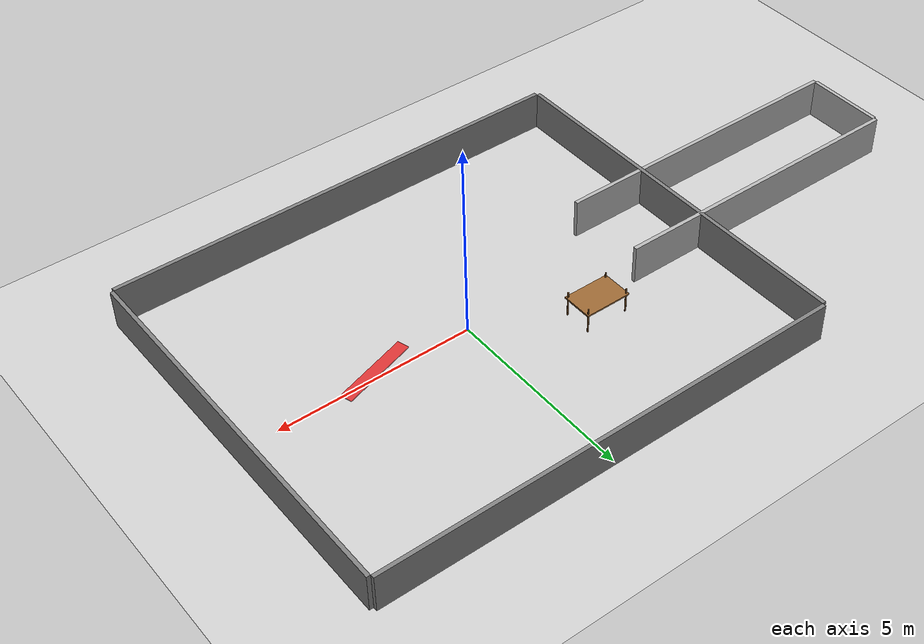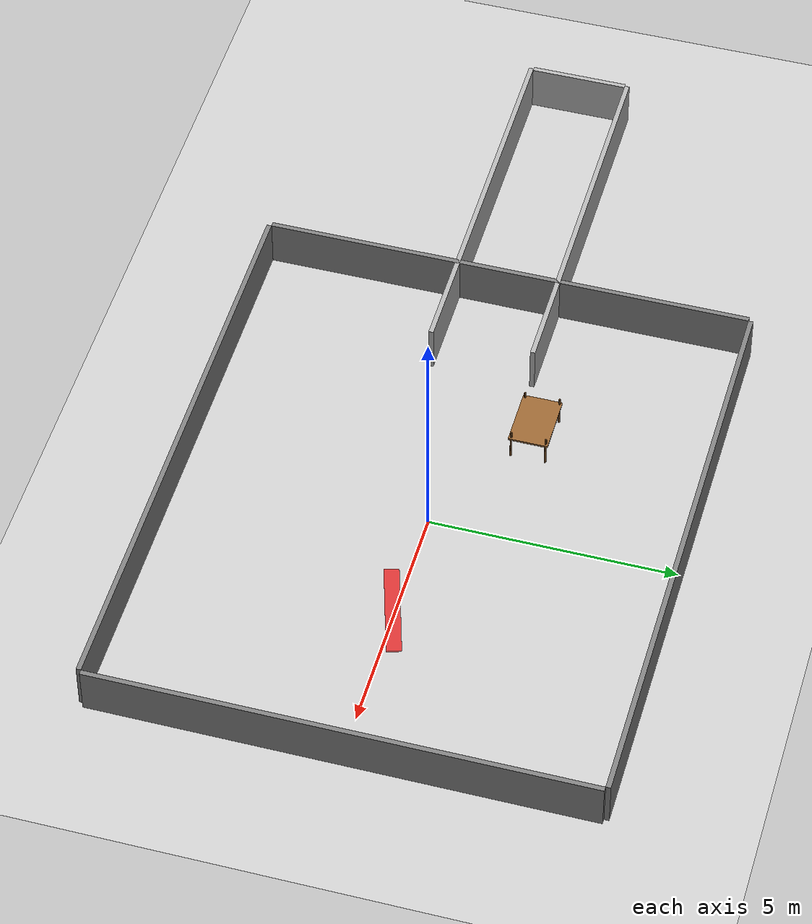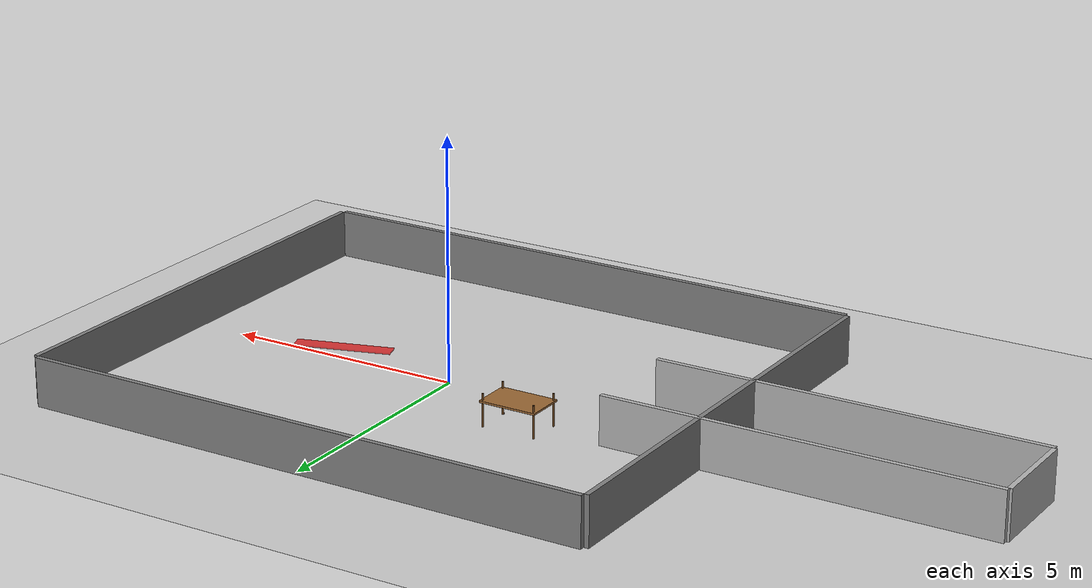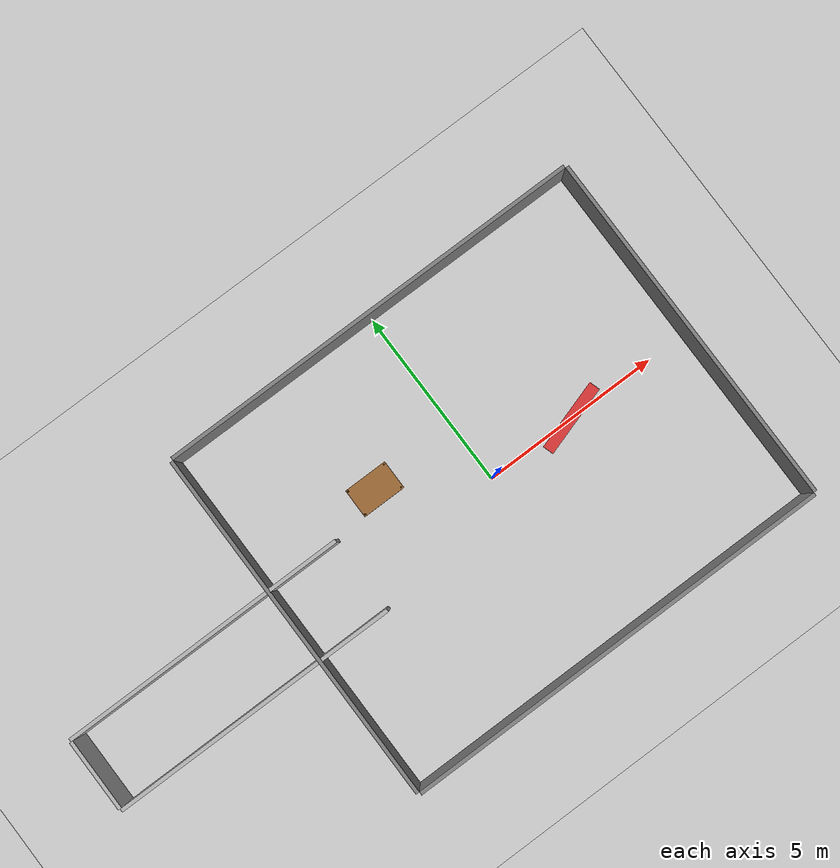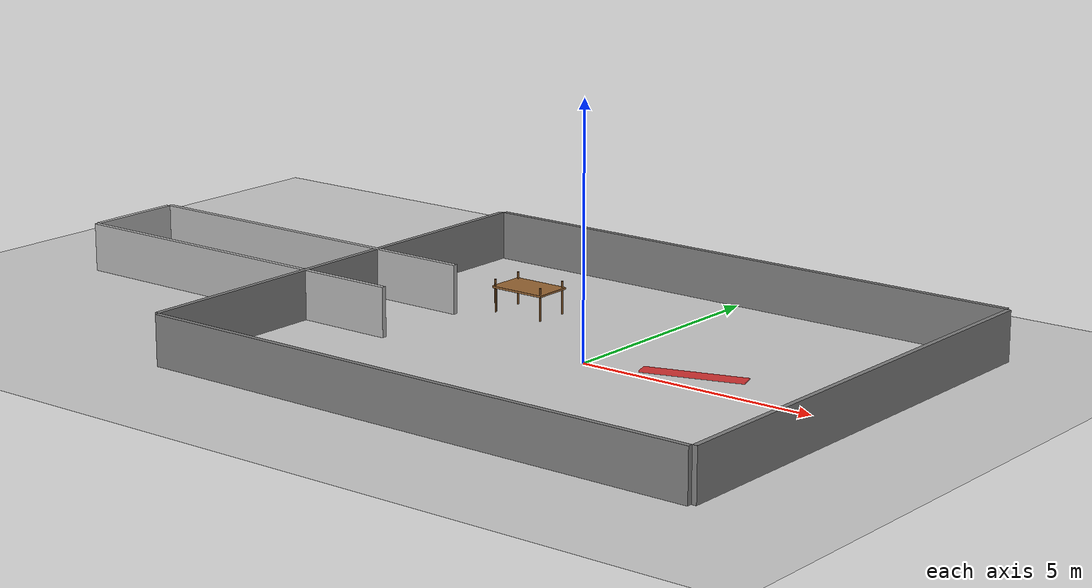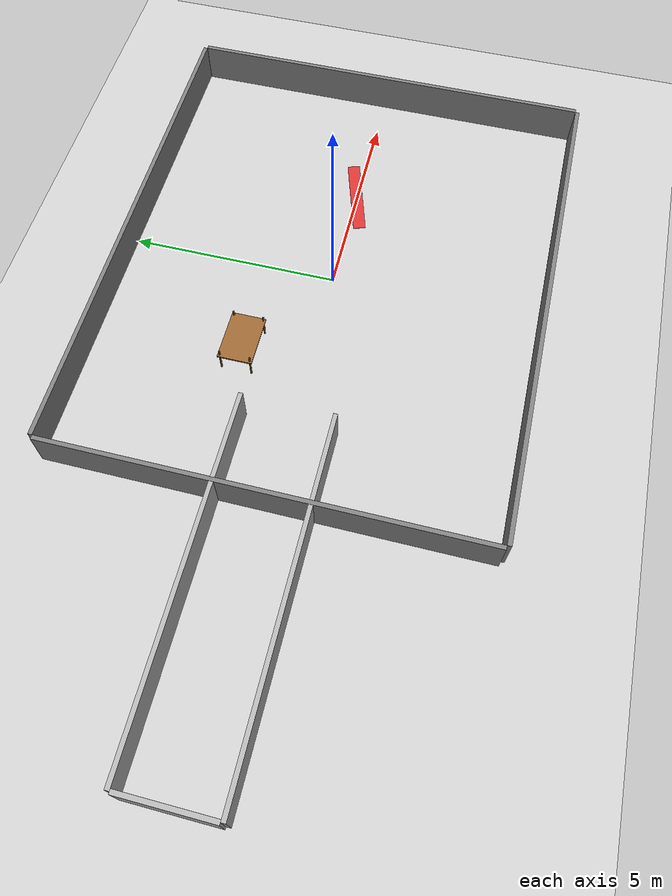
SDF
<sdf version="1.6">
 <world name="test_3d_obstacles">
  <gravity>0 0 -9.81</gravity>
  <magnetic_field>0 0 -5e-05</magnetic_field>
  <atmosphere type="adiabatic"/>
  <physics type="ode">
   <real_time_update_rate>1000</real_time_update_rate>
   <real_time_factor>1</real_time_factor>
   <ode>
    <solver><type>quick</type><iters>50</iters><precon>1</precon></solver>
    <constraints>
     <cfm>0.00001</cfm>
     <erp>0.2</erp>
     <contact_max_correcting_vel>100</contact_max_correcting_vel>
     <contact_surface_layer>0.001</contact_surface_layer>
    </constraints>
   </ode>
  </physics>
  <scene><ambient>0.4 0.4 0.4 1</ambient><background>0.7 0.7 0.7 1</background><shadows>true</shadows></scene>
  <light name="sun" type="directional">
   <diffuse>0.8 0.8 0.8 1</diffuse>
   <specular>0.2 0.2 0.2 1</specular>
   <direction>0.3 0.2 -1</direction>
  </light>
  <include><uri>model://ground_plane</uri></include>
  <model name="wall_north">
   <static>true</static>
   <pose>0 5.05 0.5 0 0 0</pose>
   <link name="body">
    <collision name="col"><geometry><box><size>12 0.1 1</size></box></geometry></collision>
    <visual name="vis">
     <geometry><box><size>12 0.1 1</size></box></geometry>
     <material><ambient>0.5 0.5 0.5 1</ambient></material>
    </visual>
   </link>
  </model>
  <model name="wall_south">
   <static>true</static>
   <pose>0 -5.05 0.5 0 0 0</pose>
   <link name="body">
    <collision name="col"><geometry><box><size>12 0.1 1</size></box></geometry></collision>
    <visual name="vis">
     <geometry><box><size>12 0.1 1</size></box></geometry>
     <material><ambient>0.5 0.5 0.5 1</ambient></material>
    </visual>
   </link>
  </model>
  <model name="wall_east">
   <static>true</static>
   <pose>6.05 0 0.5 0 0 1.5707963</pose>
   <link name="body">
    <collision name="col"><geometry><box><size>10 0.1 1</size></box></geometry></collision>
    <visual name="vis">
     <geometry><box><size>10 0.1 1</size></box></geometry>
     <material><ambient>0.5 0.5 0.5 1</ambient></material>
    </visual>
   </link>
  </model>
  <model name="wall_west">
   <static>true</static>
   <pose>-6.05 0 0.5 0 0 1.5707963</pose>
   <link name="body">
    <collision name="col"><geometry><box><size>10 0.1 1</size></box></geometry></collision>
    <visual name="vis">
     <geometry><box><size>10 0.1 1</size></box></geometry>
     <material><ambient>0.5 0.5 0.5 1</ambient></material>
    </visual>
   </link>
  </model>
  <model name="table">
   <static>true</static>
   <pose>-2.5 1.5 0.35 0 0 0</pose>
   <link name="tabletop">
    <pose>0 0 0.35 0 0 0</pose>
    <collision name="col"><geometry><box><size>1.2 0.8 0.04</size></box></geometry></collision>
    <visual name="vis">
     <geometry><box><size>1.2 0.8 0.04</size></box></geometry>
     <material><ambient>0.6 0.4 0.2 1</ambient></material>
    </visual>
   </link>
   <link name="leg1">
    <pose>-0.55 0.35 0.17 0 0 0</pose>
    <collision name="col">
     <geometry><cylinder><radius>0.02</radius><length>0.66</length></cylinder></geometry>
    </collision>
    <visual name="vis">
     <geometry><cylinder><radius>0.02</radius><length>0.66</length></cylinder></geometry>
     <material><ambient>0.4 0.25 0.1 1</ambient></material>
    </visual>
   </link>
   <joint name="leg1_joint" type="fixed"><parent>tabletop</parent><child>leg1</child></joint>
   <link name="leg2">
    <pose>0.55 0.35 0.17 0 0 0</pose>
    <collision name="col">
     <geometry><cylinder><radius>0.02</radius><length>0.66</length></cylinder></geometry>
    </collision>
    <visual name="vis">
     <geometry><cylinder><radius>0.02</radius><length>0.66</length></cylinder></geometry>
     <material><ambient>0.4 0.25 0.1 1</ambient></material>
    </visual>
   </link>
   <joint name="leg2_joint" type="fixed"><parent>tabletop</parent><child>leg2</child></joint>
   <link name="leg3">
    <pose>-0.55 -0.35 0.17 0 0 0</pose>
    <collision name="col">
     <geometry><cylinder><radius>0.02</radius><length>0.66</length></cylinder></geometry>
    </collision>
    <visual name="vis">
     <geometry><cylinder><radius>0.02</radius><length>0.66</length></cylinder></geometry>
     <material><ambient>0.4 0.25 0.1 1</ambient></material>
    </visual>
   </link>
   <joint name="leg3_joint" type="fixed"><parent>tabletop</parent><child>leg3</child></joint>
   <link name="leg4">
    <pose>0.55 -0.35 0.17 0 0 0</pose>
    <collision name="col">
     <geometry><cylinder><radius>0.02</radius><length>0.66</length></cylinder></geometry>
    </collision>
    <visual name="vis">
     <geometry><cylinder><radius>0.02</radius><length>0.66</length></cylinder></geometry>
     <material><ambient>0.4 0.25 0.1 1</ambient></material>
    </visual>
   </link>
   <joint name="leg4_joint" type="fixed"><parent>tabletop</parent><child>leg4</child></joint>
  </model>
  <model name="suspended_board">
   <static>true</static>
   <pose>2.5 0 0.25 0 0 0.3</pose>
   <link name="board">
    <collision name="col"><geometry><box><size>2 0.3 0.03</size></box></geometry></collision>
    <visual name="vis">
     <geometry><box><size>2 0.3 0.03</size></box></geometry>
     <material><ambient>0.9 0.1 0.1 0.8</ambient></material>
    </visual>
   </link>
  </model>
  <model name="corridor_left_wall">
   <static>true</static>
   <pose>-8 1.05 0.5 0 0 0</pose>
   <link name="body">
    <collision name="col"><geometry><box><size>8 0.1 1</size></box></geometry></collision>
    <visual name="vis">
     <geometry><box><size>8 0.1 1</size></box></geometry>
     <material><ambient>0.7 0.7 0.7 1</ambient></material>
    </visual>
   </link>
  </model>
  <model name="corridor_right_wall">
   <static>true</static>
   <pose>-8 -1.05 0.5 0 0 0</pose>
   <link name="body">
    <collision name="col"><geometry><box><size>8 0.1 1</size></box></geometry></collision>
    <visual name="vis">
     <geometry><box><size>8 0.1 1</size></box></geometry>
     <material><ambient>0.7 0.7 0.7 1</ambient></material>
    </visual>
   </link>
  </model>
  <model name="corridor_end">
   <static>true</static>
   <pose>-12 0 0.5 0 0 0</pose>
   <link name="body">
    <collision name="col"><geometry><box><size>0.1 2 1</size></box></geometry></collision>
    <visual name="vis">
     <geometry><box><size>0.1 2 1</size></box></geometry>
     <material><ambient>0.7 0.7 0.7 1</ambient></material>
    </visual>
   </link>
  </model>
 </world>
</sdf>
